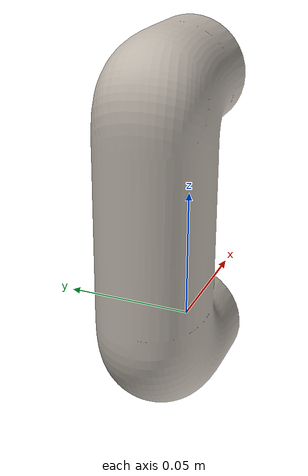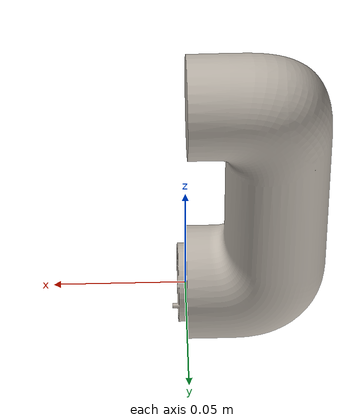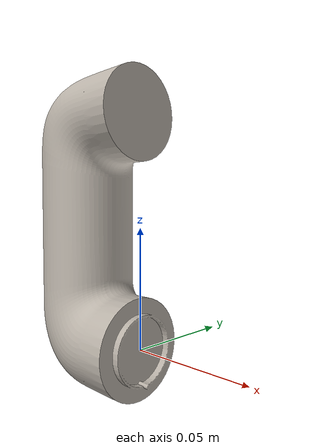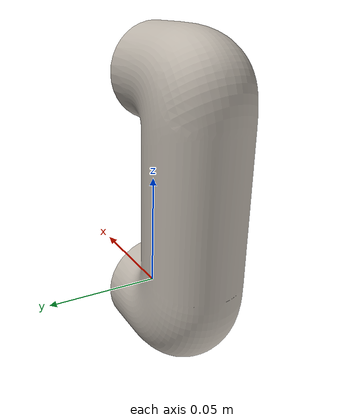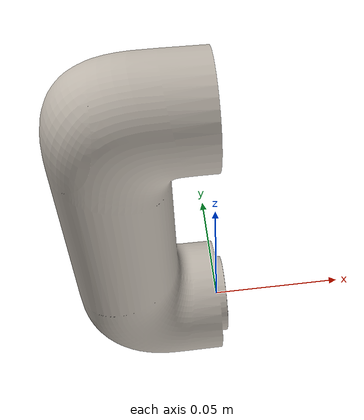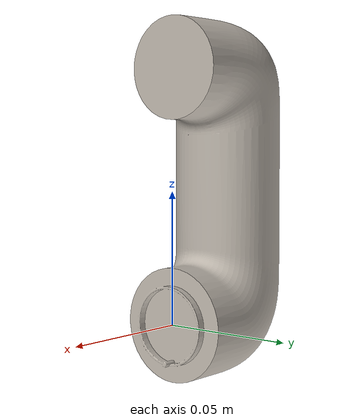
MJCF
<mujoco model="link4">
  <default>
    <default class="visual">
      <geom group="2" type="mesh" contype="0" conaffinity="0"/>
    </default>
    <default class="collision">
      <geom group="3" type="mesh"/>
    </default>
  </default>
  <asset>
    <texture type="2d" name="link4" file="link4.png"/>
    <material name="material0.003" texture="link4" specular="0.0" shininess="0.25"/>
    <mesh file="link4.obj"/>
  </asset>
  <worldbody>
    <body name="link4">
      <geom material="material0.003" mesh="link4" class="visual"/>
      <geom mesh="link4" class="collision"/>
    </body>
  </worldbody>
</mujoco>
